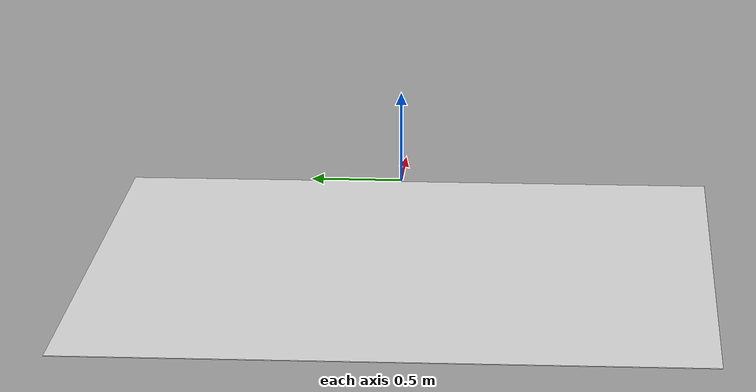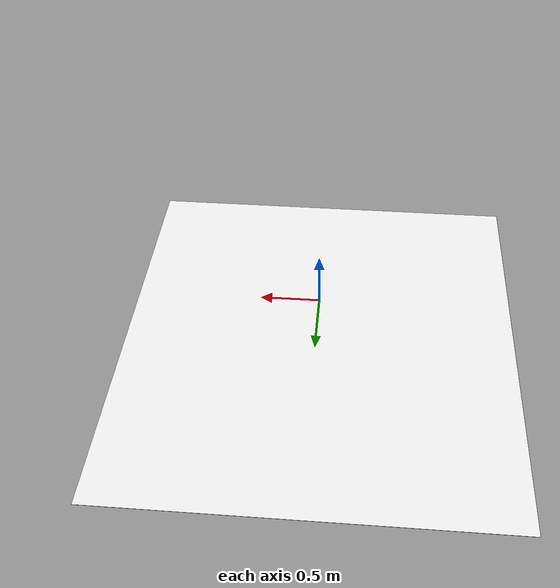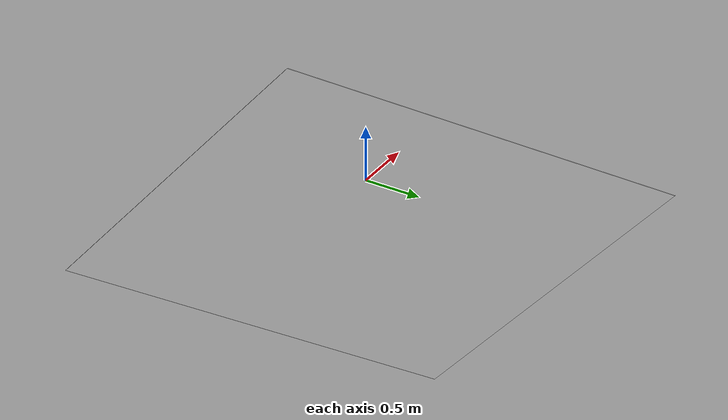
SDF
<?xml version='1.0'?>
<sdf version='1.6'>
  <model name='FLOOR_TILE'>
    <link name='link_0'>
      <pose frame=''>0 0 0 0 -0 0</pose>
      <inertial>
        <mass>1</mass>
        <inertia>
          <ixx>1</ixx>
          <ixy>0</ixy>
          <ixz>0</ixz>
          <iyy>1</iyy>
          <iyz>0</iyz>
          <izz>1</izz>
        </inertia>
        <pose frame=''>0 0 0 0 -0 0</pose>
      </inertial>
      <self_collide>0</self_collide>
      <kinematic>0</kinematic>
      <gravity>0</gravity>
      <visual name='visual'>
        <pose frame=''>0 0 -0.49 0 -0 0</pose>
        <geometry>
          <plane>
            <normal>0 0 1</normal>
            <size>3.5 3.5</size>
          </plane>
        </geometry>
        <material>
          <lighting>1</lighting>
          <script>
            <uri>file://media/materials/scripts/gazebo.material</uri>
            <name>Gazebo/White</name>
          </script>
          <ambient>1 1 1 1</ambient>
          <diffuse>1 1 1 1</diffuse>
          <specular>1 1 1 1</specular>
          <emissive>0 0 0 1</emissive>
          <shader type='vertex'>
            <normal_map>__default__</normal_map>
          </shader>
        </material>
        <transparency>0</transparency>
        <cast_shadows>1</cast_shadows>
      </visual>
      <collision name='collision'>
        <laser_retro>0</laser_retro>
        <max_contacts>10</max_contacts>
        <pose frame=''>0 0 -0.49 0 -0 0</pose>
        <geometry>
          <plane>
            <normal>0 0 1</normal>
            <size>100 100</size>
          </plane>
        </geometry>
        <surface>
          <friction>
            <ode>
              <mu>100</mu>
              <mu2>50</mu2>
              <fdir1>0 0 0</fdir1>
              <slip1>0</slip1>
              <slip2>0</slip2>
            </ode>
            <torsional>
              <coefficient>1</coefficient>
              <patch_radius>0</patch_radius>
              <surface_radius>0</surface_radius>
              <use_patch_radius>1</use_patch_radius>
              <ode>
                <slip>0</slip>
              </ode>
            </torsional>
          </friction>
          <bounce>
            <restitution_coefficient>0</restitution_coefficient>
            <threshold>1e+05</threshold>
          </bounce>
          <contact>
            <collide_without_contact>0</collide_without_contact>
            <collide_without_contact_bitmask>1</collide_without_contact_bitmask>
            <collide_bitmask>1</collide_bitmask>
            <ode>
              <soft_cfm>0</soft_cfm>
              <soft_erp>0.2</soft_erp>
              <kp>1e+13</kp>
              <kd>1</kd>
              <max_vel>0.01</max_vel>
              <min_depth>0</min_depth>
            </ode>
            <bullet>
              <split_impulse>1</split_impulse>
              <split_impulse_penetration_threshold>-0.01</split_impulse_penetration_threshold>
              <soft_cfm>0</soft_cfm>
              <soft_erp>0.2</soft_erp>
              <kp>1e+13</kp>
              <kd>1</kd>
            </bullet>
          </contact>
        </surface>
      </collision>
    </link>
    <static>true</static>
    <allow_auto_disable>1</allow_auto_disable>
  </model>
</sdf>
